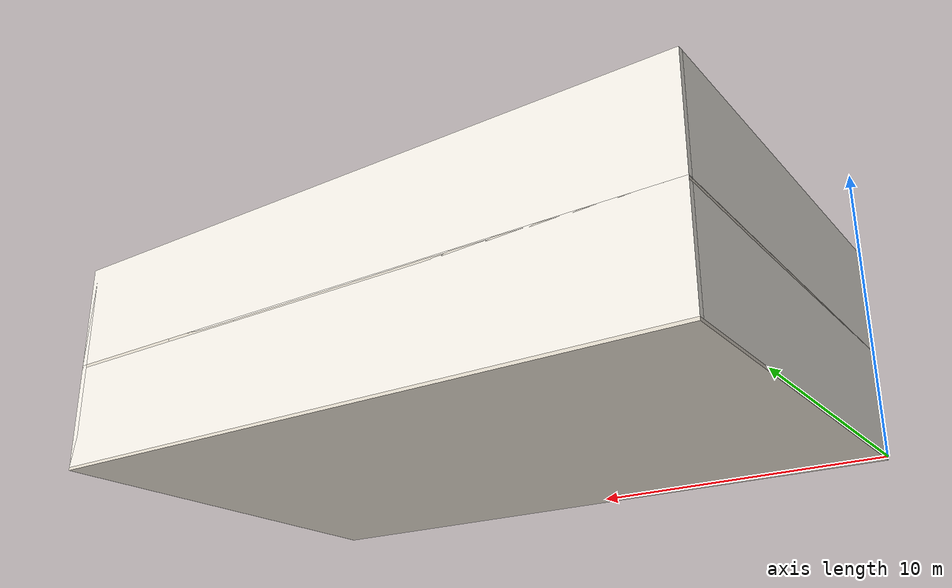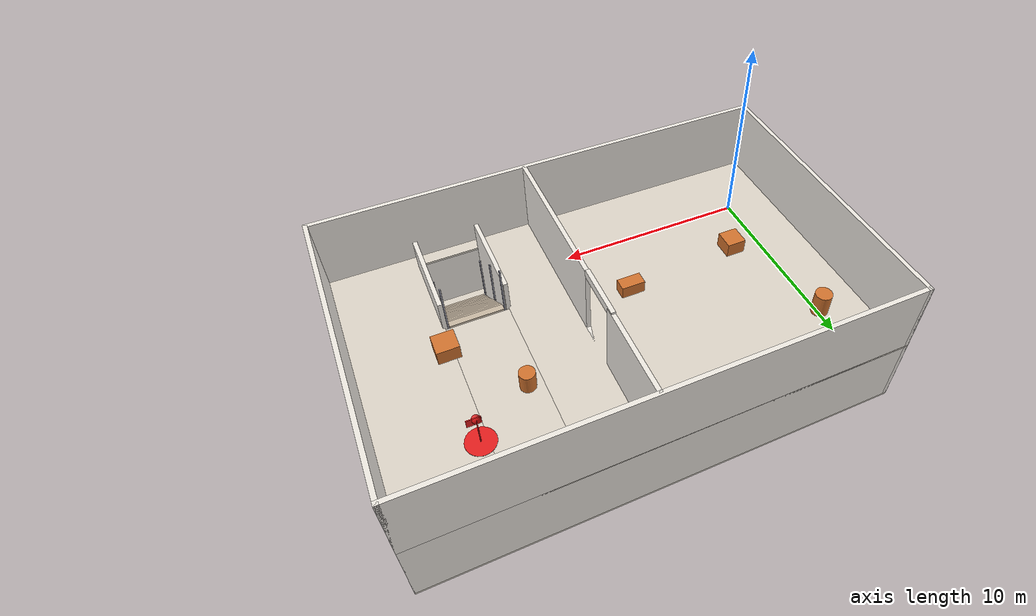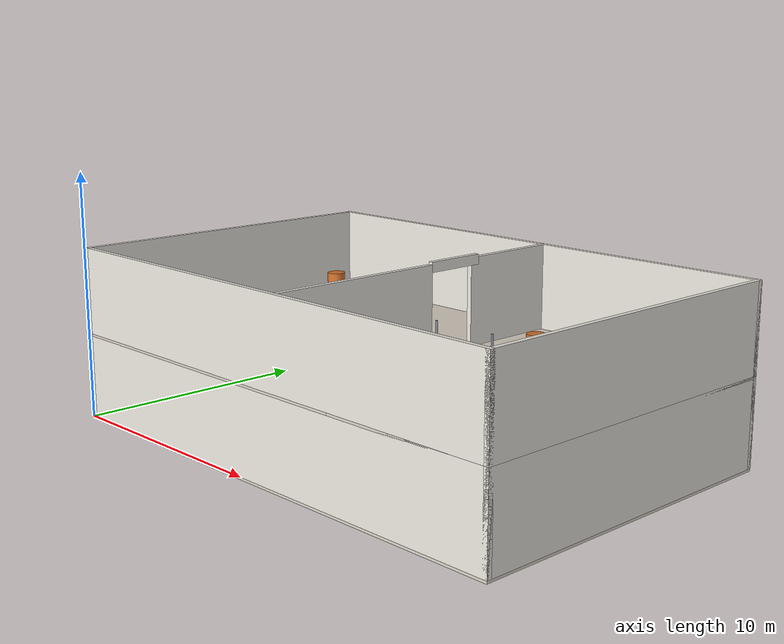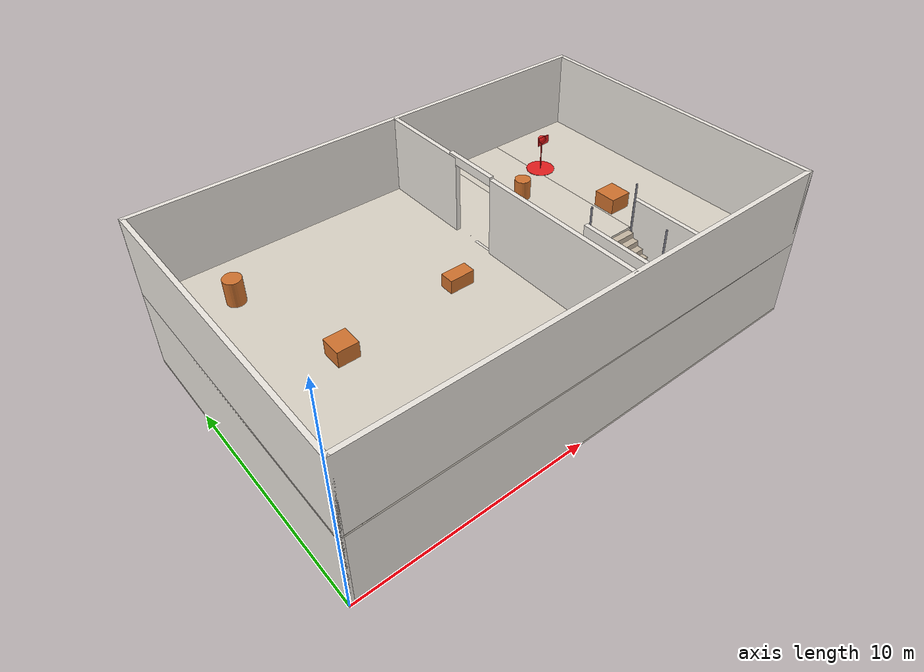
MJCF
<mujoco model="mappilot_demo_building">

  <compiler angle="radian" autolimits="true"/>
  <option gravity="0 0 -9.81" timestep="0.002" integrator="RK4"/>

  <visual>
    <headlight diffuse="0.6 0.6 0.6" ambient="0.35 0.35 0.35" specular="0.0 0.0 0.0"/>
    <rgba haze="0.12 0.18 0.24 1"/>
    <global azimuth="-40" elevation="-18" fovy="50"/>
  </visual>

  <asset>
    <material name="floor_mat"  rgba=".86 .83 .78 1" shininess="0.05" specular="0.1"/>
    <material name="wall_mat"   rgba=".93 .91 .88 1" shininess="0.03" specular="0.05"/>
    <material name="stair_mat"  rgba=".78 .72 .64 1" shininess="0.05" specular="0.1"/>
    <material name="glass_mat"  rgba=".70 .85 .90 0.35"/>
    <material name="robot_mat"  rgba=".18 .38 .76 1"/>
    <material name="lidar_mat"  rgba=".00 .78 .85 1"/>
    <material name="obs_mat"    rgba=".82 .45 .18 1"/>
    <material name="start_mat"  rgba=".15 .78 .28 0.85"/>
    <material name="goal_mat"   rgba=".90 .12 .12 0.90"/>
    <material name="rail_mat"   rgba=".55 .55 .60 1"/>
    <material name="arrow_mat"  rgba=".95 .75 .05 1"/>
  </asset>

  <worldbody>

    <!-- ═══════════════════════════════════════════════════════════════
         1F — 地面层  (Z = 0 ~ 3.5m)
    ══════════════════════════════════════════════════════════════════ -->

    <!-- 地板 -->
    <geom name="floor_1" type="box"
          pos="11 7 -0.05" size="11 7 0.05"
          material="floor_mat" conaffinity="1" condim="3"/>

    <!-- 外墙（厚 0.2m，高 3.5m）-->
    <geom name="wall_1_S" type="box" pos="11 0.10 1.75" size="11 0.10 1.75" material="wall_mat" conaffinity="1"/>
    <geom name="wall_1_N" type="box" pos="11 13.90 1.75" size="11 0.10 1.75" material="wall_mat" conaffinity="1"/>
    <geom name="wall_1_W" type="box" pos="0.10 7 1.75" size="0.10 7 1.75" material="wall_mat" conaffinity="1"/>
    <geom name="wall_1_E" type="box" pos="21.90 7 1.75" size="0.10 7 1.75" material="wall_mat" conaffinity="1"/>

    <!-- 1F 内部隔墙：X=12, 把大厅和楼梯间分开
         门洞留在 Y=5.5~8.5（3m 宽）-->
    <geom name="wall_1_int_S" type="box" pos="12.0 2.65 1.75" size="0.10 2.55 1.75" material="wall_mat" conaffinity="1"/>
    <geom name="wall_1_int_N" type="box" pos="12.0 11.25 1.75" size="0.10 2.65 1.75" material="wall_mat" conaffinity="1"/>
    <!-- 门洞上方过梁（高 0.8m，Z=2.7~3.5）-->
    <geom name="wall_1_int_lintel" type="box" pos="12.0 7 3.10" size="0.10 1.50 0.40" material="wall_mat" conaffinity="1"/>

    <!-- 1F 大厅障碍物 -->
    <geom name="obs_1_box"   type="box"      pos="5.0 5.0  0.60" size="0.55 0.55 0.60" material="obs_mat" conaffinity="1"/>
    <geom name="obs_2_box"   type="box"      pos="8.5 10.5 0.50" size="0.70 0.35 0.50" material="obs_mat" conaffinity="1"/>
    <geom name="obs_3_cyl"   type="cylinder" pos="3.5 9.0  0.80" size="0.42 0.80"      material="obs_mat" conaffinity="1"/>
    <geom name="obs_4_box"   type="box"      pos="10.5 3.5 0.40" size="0.45 0.80 0.40" material="obs_mat" conaffinity="1"/>
    <geom name="obs_5_cyl"   type="cylinder" pos="6.0  2.0 0.50" size="0.30 0.50"      material="obs_mat" conaffinity="1"/>

    <geom name="stair_wall_W" type="box" pos="14.80 2.90 2.50"
          size="0.10 2.10 2.50" material="wall_mat" conaffinity="1"/>
    <geom name="stair_wall_E" type="box" pos="17.70 2.90 2.50"
          size="0.10 2.10 2.50" material="wall_mat" conaffinity="1"/>

    <!-- X半=1.25(宽2.5m), Y半=0.15(run/2), Z半=(i+1)*0.125 -->
    <geom name="step_00" type="box" pos="16.25 0.95 0.1250" size="1.25 0.15 0.1250" material="stair_mat" conaffinity="1"/>
    <geom name="step_01" type="box" pos="16.25 1.25 0.2500" size="1.25 0.15 0.2500" material="stair_mat" conaffinity="1"/>
    <geom name="step_02" type="box" pos="16.25 1.55 0.3750" size="1.25 0.15 0.3750" material="stair_mat" conaffinity="1"/>
    <geom name="step_03" type="box" pos="16.25 1.85 0.5000" size="1.25 0.15 0.5000" material="stair_mat" conaffinity="1"/>
    <geom name="step_04" type="box" pos="16.25 2.15 0.6250" size="1.25 0.15 0.6250" material="stair_mat" conaffinity="1"/>
    <geom name="step_05" type="box" pos="16.25 2.45 0.7500" size="1.25 0.15 0.7500" material="stair_mat" conaffinity="1"/>
    <geom name="step_06" type="box" pos="16.25 2.75 0.8750" size="1.25 0.15 0.8750" material="stair_mat" conaffinity="1"/>
    <geom name="step_07" type="box" pos="16.25 3.05 1.0000" size="1.25 0.15 1.0000" material="stair_mat" conaffinity="1"/>
    <geom name="step_08" type="box" pos="16.25 3.35 1.1250" size="1.25 0.15 1.1250" material="stair_mat" conaffinity="1"/>
    <geom name="step_09" type="box" pos="16.25 3.65 1.2500" size="1.25 0.15 1.2500" material="stair_mat" conaffinity="1"/>
    <geom name="step_10" type="box" pos="16.25 3.95 1.3750" size="1.25 0.15 1.3750" material="stair_mat" conaffinity="1"/>
    <geom name="step_11" type="box" pos="16.25 4.25 1.5000" size="1.25 0.15 1.5000" material="stair_mat" conaffinity="1"/>
    <geom name="step_12" type="box" pos="16.25 4.55 1.6250" size="1.25 0.15 1.6250" material="stair_mat" conaffinity="1"/>
    <geom name="step_13" type="box" pos="16.25 4.85 1.7500" size="1.25 0.15 1.7500" material="stair_mat" conaffinity="1"/>
    <!-- 楼梯顶端面: Y=5.0, Z=3.5m ✓ -->

    <!-- 楼梯扶手（两侧各三根立柱）-->
    <geom name="rail_W_0"  type="cylinder" pos="14.95 1.0 1.40" size="0.04 1.40" material="rail_mat" conaffinity="0"/>
    <geom name="rail_W_7"  type="cylinder" pos="14.95 3.1 2.25" size="0.04 2.25" material="rail_mat" conaffinity="0"/>
    <geom name="rail_W_13" type="cylinder" pos="14.95 4.9 2.90" size="0.04 2.90" material="rail_mat" conaffinity="0"/>
    <geom name="rail_E_0"  type="cylinder" pos="17.55 1.0 1.40" size="0.04 1.40" material="rail_mat" conaffinity="0"/>
    <geom name="rail_E_7"  type="cylinder" pos="17.55 3.1 2.25" size="0.04 2.25" material="rail_mat" conaffinity="0"/>
    <geom name="rail_E_13" type="cylinder" pos="17.55 4.9 2.90" size="0.04 2.90" material="rail_mat" conaffinity="0"/>

    <!-- 2F 楼板（避开楼梯开口）-->
    <!-- 西侧大块: X=0~14.8, Y=0~14 -->
    <geom name="floor_2_W" type="box" pos="7.40 7.00 3.45" size="7.40 7.00 0.05" material="floor_mat" conaffinity="1" condim="3"/>
    <!-- 东侧: X=17.7~22, Y=0~14 -->
    <geom name="floor_2_E" type="box" pos="19.85 7.00 3.45" size="2.15 7.00 0.05" material="floor_mat" conaffinity="1" condim="3"/>
    <!-- 北侧楼梯上方: X=14.8~17.7, Y=5.1~14 -->
    <geom name="floor_2_N" type="box" pos="16.25 9.55 3.45" size="1.45 4.45 0.05" material="floor_mat" conaffinity="1" condim="3"/>
    <!-- 南侧楼梯下方: X=14.8~17.7, Y=0~0.8 -->
    <geom name="floor_2_S" type="box" pos="16.25 0.40 3.45" size="1.45 0.40 0.05" material="floor_mat" conaffinity="1" condim="3"/>

    <!-- 2F 外墙 (Z=3.5~7.0) -->
    <geom name="wall_2_S" type="box" pos="11 0.10 5.25" size="11 0.10 1.75" material="wall_mat" conaffinity="1"/>
    <geom name="wall_2_N" type="box" pos="11 13.90 5.25" size="11 0.10 1.75" material="wall_mat" conaffinity="1"/>
    <geom name="wall_2_W" type="box" pos="0.10 7 5.25" size="0.10 7 1.75" material="wall_mat" conaffinity="1"/>
    <geom name="wall_2_E" type="box" pos="21.90 7 5.25" size="0.10 7 1.75" material="wall_mat" conaffinity="1"/>

    <!-- 2F 内隔墙：X=12 将走廊和 Room B 分开，门洞 Y=7.5~10 -->
    <geom name="wall_2_int_S" type="box" pos="12 3.80 5.25" size="0.10 3.70 1.75" material="wall_mat" conaffinity="1"/>
    <geom name="wall_2_int_N" type="box" pos="12 11.75 5.25" size="0.10 2.15 1.75" material="wall_mat" conaffinity="1"/>
    <!-- 门洞上方过梁 -->
    <geom name="wall_2_lintel" type="box" pos="12 8.75 6.90" size="0.10 1.25 0.20" material="wall_mat" conaffinity="1"/>

    <!-- 2F 走廊障碍物（西侧大厅区）-->
    <geom name="obs_2f_1" type="box"      pos="4.0 6.0  4.10" size="0.45 0.45 0.35" material="obs_mat" conaffinity="1"/>
    <geom name="obs_2f_2" type="box"      pos="9.5 6.5  4.05" size="0.55 0.30 0.30" material="obs_mat" conaffinity="1"/>
    <geom name="obs_2f_3" type="cylinder" pos="2.5 11.0 4.30" size="0.38 0.55"      material="obs_mat" conaffinity="1"/>

    <!-- 2F Room B 障碍物（东侧，X>12）-->
    <geom name="obs_2f_4" type="box"      pos="18.0 6.5  4.10" size="0.50 0.50 0.35" material="obs_mat" conaffinity="1"/>
    <geom name="obs_2f_5" type="cylinder" pos="15.5 9.5  4.20" size="0.35 0.45"      material="obs_mat" conaffinity="1"/>

    <!-- ═══════════════════════════════════════════════════════════════
         Start 标记（绿色圆盘，1F）和 Goal 标记（红色旗帜，2F）
    ══════════════════════════════════════════════════════════════════ -->

    <!-- Start: (2, 3) 1F 大厅 -->
    <geom name="start_disk" type="cylinder" pos="2.0 3.0 0.01" size="0.65 0.01"
          material="start_mat" conaffinity="0" contype="0"/>
    <!-- "S" 文字代替：用小圆柱组成 -->
    <geom name="start_pole" type="cylinder" pos="2.0 3.0 0.80" size="0.025 0.80"
          rgba=".15 .78 .28 0.7" conaffinity="0" contype="0"/>

    <!-- Goal: (18, 11) 2F Room B -->
    <geom name="goal_disk"   type="cylinder" pos="18.0 11.0 3.51" size="0.65 0.01"
          material="goal_mat" conaffinity="0" contype="0"/>
    <geom name="goal_pole"   type="cylinder" pos="18.0 11.0 4.25" size="0.025 0.75"
          rgba=".90 .12 .12 0.9" conaffinity="0" contype="0"/>
    <geom name="goal_flag"   type="box"      pos="18.10 11.0 4.95" size="0.30 0.02 0.20"
          rgba=".90 .12 .12 1" conaffinity="0" contype="0"/>
    <geom name="goal_ball"   type="sphere"   pos="18.0 11.0 5.05" size="0.18"
          rgba=".90 .12 .12 0.85" conaffinity="0" contype="0"/>

    <body name="base_link" pos="2.0 3.0 0.50">
      <freejoint name="robot_root"/>

      <!-- 机体（替换为自研 URDF mesh）-->
      <geom name="chassis" type="box" size="0.42 0.28 0.10"
            material="robot_mat" mass="22" conaffinity="1"/>

      <!-- 简化腿（视觉占位，等待自研 URDF）-->
      <geom name="leg_fl" type="capsule" size="0.032"
            fromto=" 0.30  0.20 -.10  0.30  0.20 -.40" rgba=".12 .32 .72 1" mass="0.8" conaffinity="1"/>
      <geom name="leg_fr" type="capsule" size="0.032"
            fromto=" 0.30 -.20 -.10  0.30 -.20 -.40" rgba=".12 .32 .72 1" mass="0.8" conaffinity="1"/>
      <geom name="leg_rl" type="capsule" size="0.032"
            fromto="-.30  0.20 -.10 -.30  0.20 -.40" rgba=".12 .32 .72 1" mass="0.8" conaffinity="1"/>
      <geom name="leg_rr" type="capsule" size="0.032"
            fromto="-.30 -.20 -.10 -.30 -.20 -.40" rgba=".12 .32 .72 1" mass="0.8" conaffinity="1"/>

      <!-- Livox MID-360 安装体（机体顶部中央 +0.22m）-->
      <body name="lidar_link" pos="0 0 0.22">
        <geom name="lidar_housing" type="cylinder" size="0.058 0.046"
              material="lidar_mat" mass="0.50" conaffinity="0"/>
        <geom name="lidar_pole" type="capsule" size="0.016"
              fromto="0 0 -0.01  0 0 -0.13" rgba=".28 .28 .28 1" mass="0.08" conaffinity="0"/>
        <!-- LiDAR 原点 site（ray_caster_lidar plugin 用）-->
        <site name="lidar_site" pos="0 0 0" size="0.001"/>
      </body>

      <!-- 前向指示箭头（黄色，X+ 方向）-->
      <geom name="dir_arrow" type="capsule" size="0.022"
            fromto="0.05 0 0.12  0.42 0 0.12" material="arrow_mat" conaffinity="0"/>

      <inertial pos="0 0 0" mass="22" diaginertia="0.78 1.18 1.18"/>
    </body>

    <!-- ─── 光源 ──────────────────────────────────────────────────────── -->
    <light name="sun"     pos="8  4 25" dir="-.2 -.1 -1" diffuse=".82 .80 .75" specular=".1 .1 .1"/>
    <light name="fill_1"  pos="0  0 15" dir=".4  .3 -1"  diffuse=".25 .28 .32"/>
    <light name="fill_2"  pos="20 14 10" dir="-.3 -.4 -1" diffuse=".20 .22 .25"/>
    <!-- 2F 室内灯 -->
    <light name="light_2f_1" pos="6 7 6.8"  dir="0 0 -1" diffuse=".60 .60 .55" castshadow="false"/>
    <light name="light_2f_2" pos="17 7 6.8" dir="0 0 -1" diffuse=".55 .55 .50" castshadow="false"/>

  </worldbody>

</mujoco>
